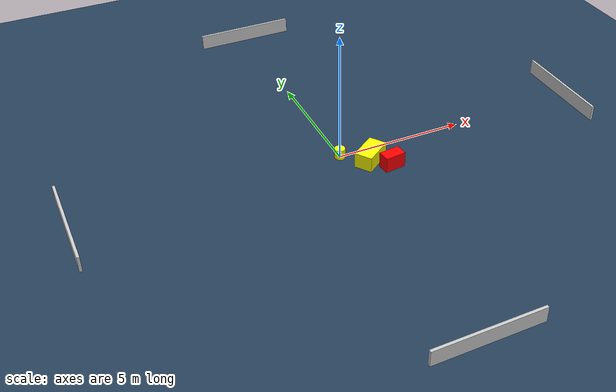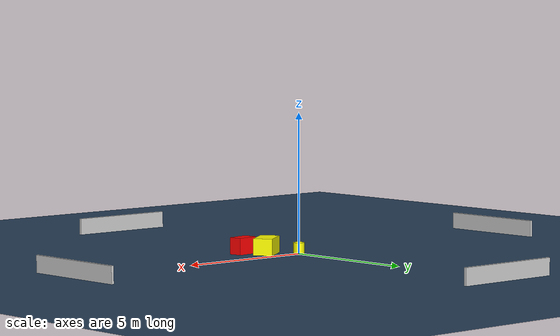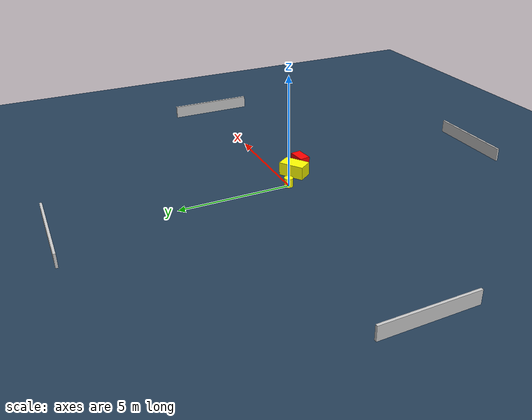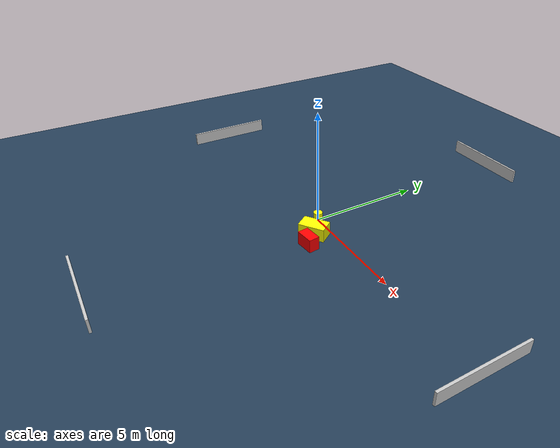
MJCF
<?xml version="1.0" ?>
<mujoco model="generated_environment">
  <option timestep="0.01" integrator="RK4" cone="elliptic"/>
  <default>
    <geom density="1"/>
  </default>
  <asset>
    <texture builtin="gradient" height="3072" name="skybox" rgb1="0.3 0.5 0.7" rgb2="0 0 0" type="skybox" width="512"/>
    <texture builtin="checker" height="300" name="groundplane" rgb1="0.2 0.3 0.4" rgb2="0.1 0.2 0.3" type="2d" width="300"/>
    <material name="groundplane" reflectance="0.2" texrepeat="5 5" texture="groundplane"/>
  </asset>
  <worldbody>
    <light dir="0 0 -1" directional="true" pos="0 0 1.5"/>
    <geom condim="3" friction="0.5 0.005 0.001" material="groundplane" name="floor" pos="0 0 0" size="0 0 0.05" type="plane"/>
    <body name="walls">
      <geom name="wall_1" condim="4" pos="-10.0 0.0 0.3" rgba="0.800000011920929 0.800000011920929 0.800000011920929 1.0" size="0.05 2.0 0.3" type="box"/>
      <geom name="wall_2" condim="4" pos="10.0 0.0 0.3" rgba="0.800000011920929 0.800000011920929 0.800000011920929 1.0" size="0.05 2.0 0.3" type="box"/>
      <geom name="wall_3" condim="4" pos="0.0 -10.0 0.3" rgba="0.800000011920929 0.800000011920929 0.800000011920929 1.0" size="2.0 0.05 0.3" type="box"/>
      <geom name="wall_4" condim="4" pos="0.0 10.0 0.3" rgba="0.800000011920929 0.800000011920929 0.800000011920929 1.0" size="2.0 0.05 0.3" type="box"/>
    </body>
    <body name="robot">
      <joint name="joint_x" type="slide" pos="0 0 0" axis="1 0 0"/>
      <joint name="joint_y" type="slide" pos="0 0 0" axis="0 1 0"/>
      <geom name="robot" type="cylinder" pos="0.0 0.0 0.2" size="0.2 0.2 0.0" mass="5.0" friction="1.0 0.005 0.0001" condim="4" rgba="1.0 1.0 0.0 1.0"/>
    </body>
    <body name="obstacle_1_movable">
      <geom name="obstacle_1_movable" condim="4" pos="0.8987332402123024 -0.717476614050804 0.3" euler="0 0 215.21375090259536" friction="0.0 0.005 0.001" rgba="1.0 1.0 0.0 1.0" size="0.5822722443928565 0.34314691948406206 0.3" type="box" mass="0.1"/>
      <joint type="free"/>
    </body>
    <body name="obstacle_2_static">
      <geom name="obstacle_2_static" condim="4" pos="1.484822300432785 -1.315475248629219 0.3" euler="0 0 6.6171624834540355" friction="0.0 0.005 0.001" rgba="1.0 0.0 0.0 1.0" size="0.40192047963832456 0.23689271601021994 0.3" type="box"/>
    </body>
  </worldbody>
  <actuator>
    <motor name="actuator_x" joint="joint_x" gear="1" ctrlrange="-1 1"/>
    <motor name="actuator_y" joint="joint_y" gear="1" ctrlrange="-1 1"/>
  </actuator>
</mujoco>
